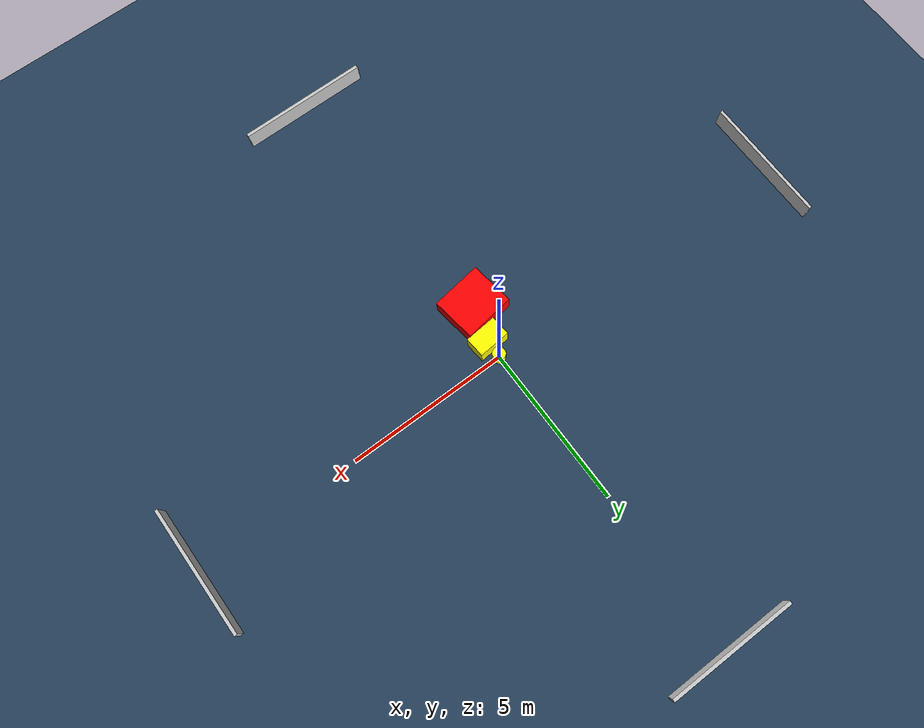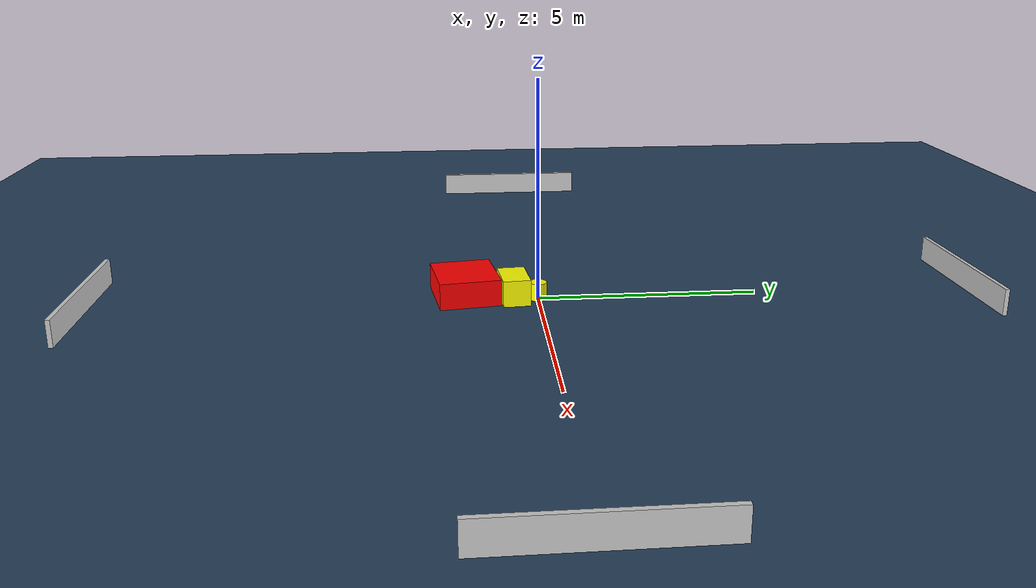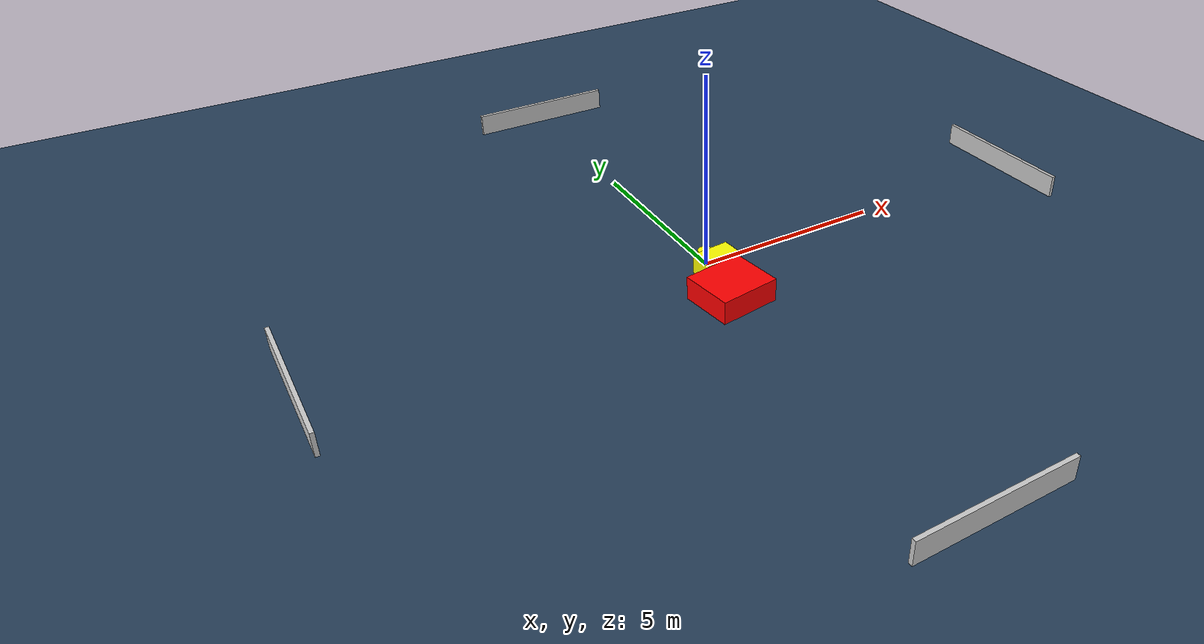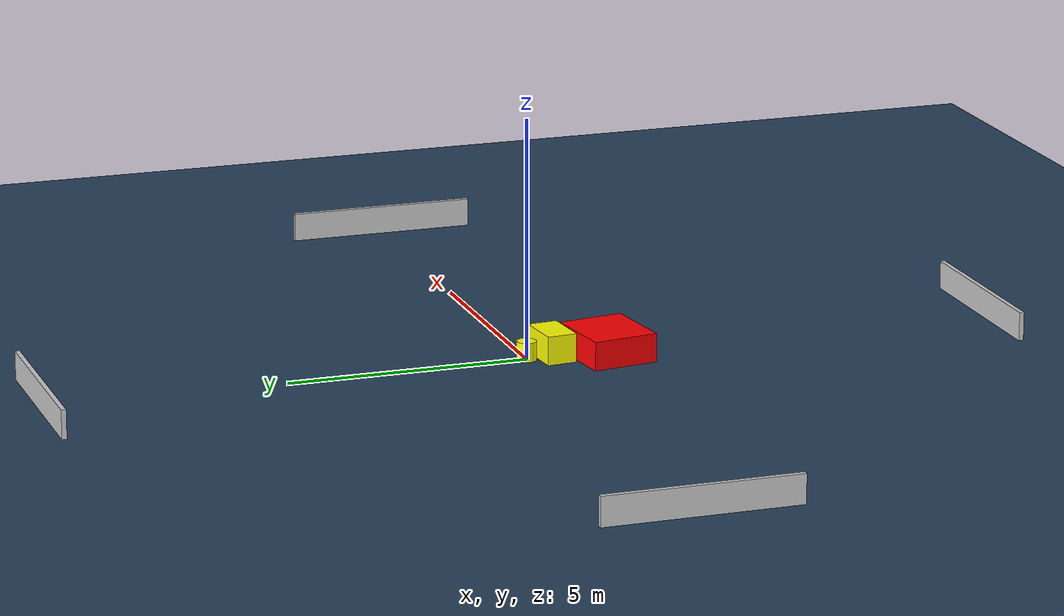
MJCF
<?xml version="1.0" ?>
<mujoco model="generated_environment">
  <option timestep="0.01" integrator="RK4" cone="elliptic"/>
  <default>
    <geom density="1"/>
  </default>
  <asset>
    <texture builtin="gradient" height="3072" name="skybox" rgb1="0.3 0.5 0.7" rgb2="0 0 0" type="skybox" width="512"/>
    <texture builtin="checker" height="300" name="groundplane" rgb1="0.2 0.3 0.4" rgb2="0.1 0.2 0.3" type="2d" width="300"/>
    <material name="groundplane" reflectance="0.2" texrepeat="5 5" texture="groundplane"/>
  </asset>
  <worldbody>
    <light dir="0 0 -1" directional="true" pos="0 0 1.5"/>
    <geom condim="3" friction="0.5 0.005 0.001" material="groundplane" name="floor" pos="0 0 0" size="0 0 0.05" type="plane"/>
    <body name="walls">
      <geom name="wall_1" condim="4" pos="-10.0 0.0 0.3" rgba="0.800000011920929 0.800000011920929 0.800000011920929 1.0" size="0.05 2.0 0.3" type="box"/>
      <geom name="wall_2" condim="4" pos="10.0 0.0 0.3" rgba="0.800000011920929 0.800000011920929 0.800000011920929 1.0" size="0.05 2.0 0.3" type="box"/>
      <geom name="wall_3" condim="4" pos="0.0 -10.0 0.3" rgba="0.800000011920929 0.800000011920929 0.800000011920929 1.0" size="2.0 0.05 0.3" type="box"/>
      <geom name="wall_4" condim="4" pos="0.0 10.0 0.3" rgba="0.800000011920929 0.800000011920929 0.800000011920929 1.0" size="2.0 0.05 0.3" type="box"/>
    </body>
    <body name="robot">
      <joint name="joint_x" type="slide" pos="0 0 0" axis="1 0 0"/>
      <joint name="joint_y" type="slide" pos="0 0 0" axis="0 1 0"/>
      <geom name="robot" type="cylinder" pos="0.0 0.0 0.2" size="0.2 0.2 0.0" mass="5.0" friction="1.0 0.005 0.0001" condim="4" rgba="1.0 1.0 0.0 1.0"/>
    </body>
    <body name="obstacle_1_movable">
      <geom name="obstacle_1_movable" condim="4" pos="-0.004579608697947017 -0.5488656191841496 0.3" euler="0 0 275.0515666220883" friction="0.0 0.005 0.001" rgba="1.0 1.0 0.0 1.0" size="0.3114649802742634 0.4924765829648344 0.3" type="box" mass="0.1"/>
      <joint type="free"/>
    </body>
    <body name="obstacle_2_static">
      <geom name="obstacle_2_static" condim="4" pos="-0.2942800206768878 -1.6385958836937997 0.3" euler="0 0 188.04596772256696" friction="0.0 0.005 0.001" rgba="1.0 0.0 0.0 1.0" size="0.784068360515926 0.6922166100103432 0.3" type="box"/>
    </body>
  </worldbody>
  <actuator>
    <motor name="actuator_x" joint="joint_x" gear="1" ctrlrange="-1 1"/>
    <motor name="actuator_y" joint="joint_y" gear="1" ctrlrange="-1 1"/>
  </actuator>
</mujoco>
